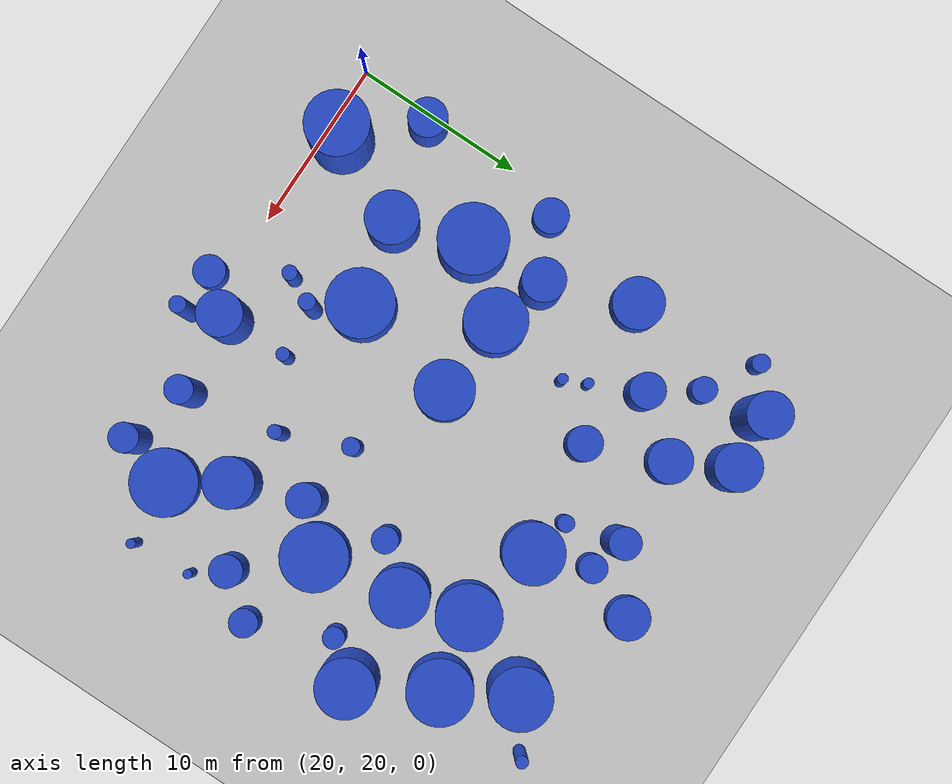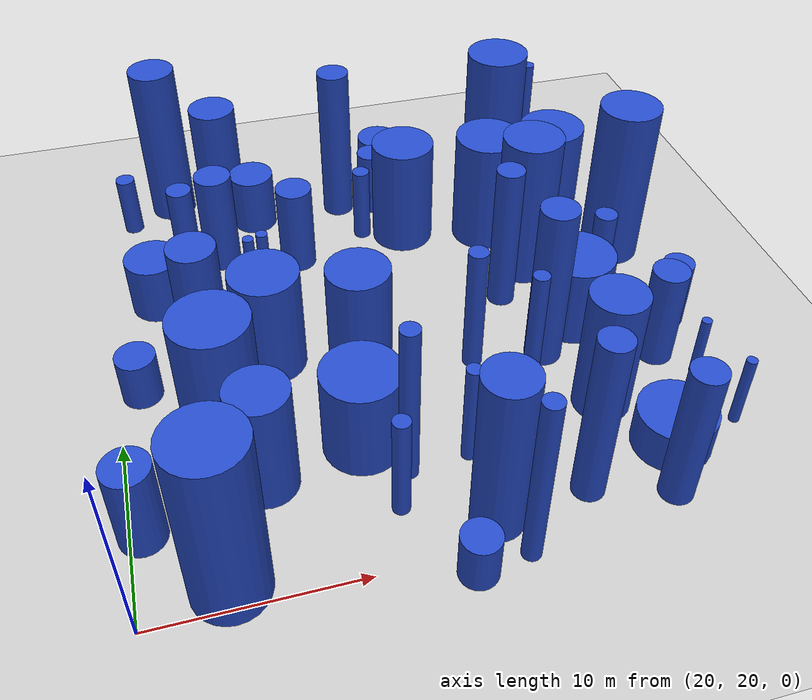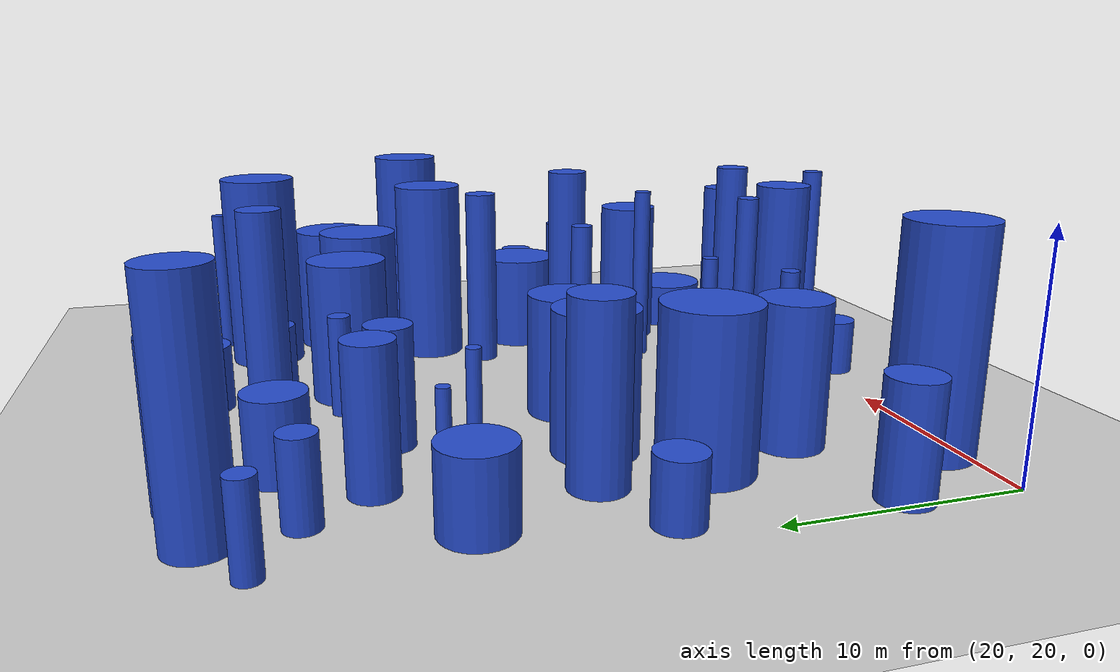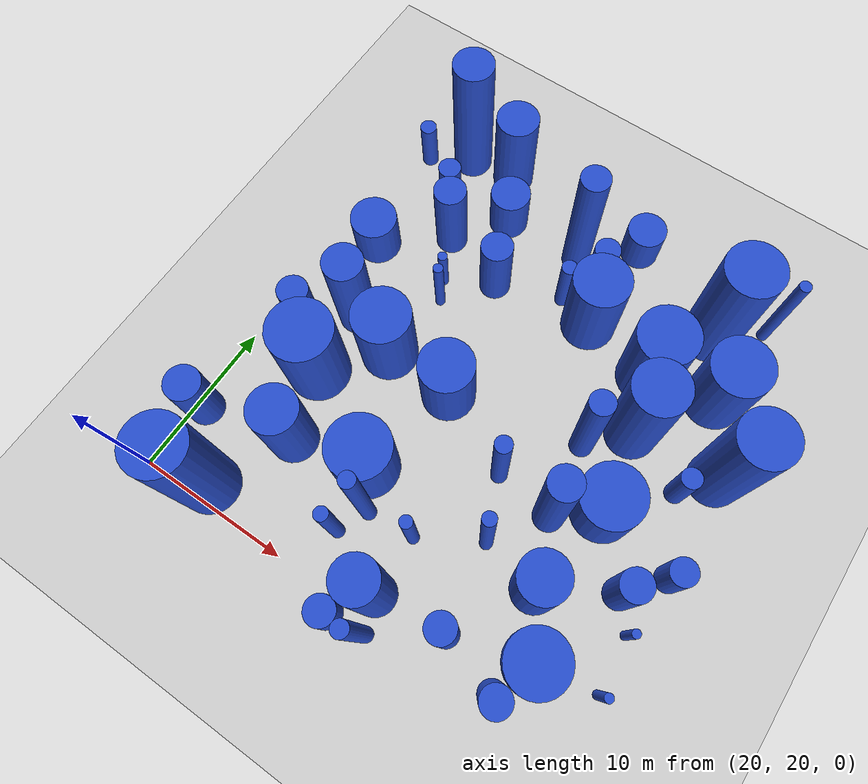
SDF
<sdf version="1.6">
 <world name="default">
  <model name="ground_plane">
   <static>1</static>
   <link name="link">
    <collision name="collision">
     <geometry><plane><normal>0 0 1</normal><size>100 100</size></plane></geometry>
     <surface><friction><ode><mu>100</mu><mu2>50</mu2></ode></friction></surface>
    </collision>
    <visual name="visual">
     <cast_shadows>0</cast_shadows>
     <geometry><plane><normal>0 0 1</normal><size>100 100</size></plane></geometry>
     <material>
      <script><uri>file://media/materials/scripts/gazebo.material</uri><name>Gazebo/Grey</name></script>
     </material>
    </visual>
   </link>
  </model>
  <model name="Cylinder 3">
   <static>1</static>
   <link name="link">
    <inertial>
     <mass>0.00305</mass>
     <inertia><ixx>0.01369</ixx><ixy>0</ixy><ixz>0</ixz><iyy>0.01369</iyy><iyz>0</iyz><izz>0.01369</izz></inertia>
    </inertial>
    <collision name="collision">
     <geometry><cylinder><length>7.28930</length><radius>0.51571</radius></cylinder></geometry>
     <surface><contact><collide_without_contact>1</collide_without_contact></contact></surface>
    </collision>
    <visual name="visual">
     <geometry><cylinder><length>7.28930</length><radius>0.51571</radius></cylinder></geometry>
     <material>
      <script><uri>file://media/materials/scripts/gazebo.material</uri><name>Gazebo/Blue</name></script>
     </material>
    </visual>
    <gravity>0</gravity>
   </link>
   <pose>38.00753 31.23064 3.64465 0 0 0</pose>
  </model>
  <model name="Cylinder 5">
   <static>1</static>
   <link name="link">
    <inertial>
     <mass>0.04239</mass>
     <inertia><ixx>0.35980</ixx><ixy>0</ixy><ixz>0</ixz><iyy>0.35980</iyy><iyz>0</iyz><izz>0.35980</izz></inertia>
    </inertial>
    <collision name="collision">
     <geometry><cylinder><length>9.66818</length><radius>1.67076</radius></cylinder></geometry>
     <surface><contact><collide_without_contact>1</collide_without_contact></contact></surface>
    </collision>
    <visual name="visual">
     <geometry><cylinder><length>9.66818</length><radius>1.67076</radius></cylinder></geometry>
     <material>
      <script><uri>file://media/materials/scripts/gazebo.material</uri><name>Gazebo/Blue</name></script>
     </material>
    </visual>
    <gravity>0</gravity>
   </link>
   <pose>48.88509 38.18238 4.83409 0 0 0</pose>
  </model>
  <model name="Cylinder 7">
   <static>1</static>
   <link name="link">
    <inertial>
     <mass>0.01169</mass>
     <inertia><ixx>0.01736</ixx><ixy>0</ixy><ixz>0</ixz><iyy>0.01736</iyy><iyz>0</iyz><izz>0.01736</izz></inertia>
    </inertial>
    <collision name="collision">
     <geometry><cylinder><length>3.33762</length><radius>1.49312</radius></cylinder></geometry>
     <surface><contact><collide_without_contact>1</collide_without_contact></contact></surface>
    </collision>
    <visual name="visual">
     <geometry><cylinder><length>3.33762</length><radius>1.49312</radius></cylinder></geometry>
     <material>
      <script><uri>file://media/materials/scripts/gazebo.material</uri><name>Gazebo/Blue</name></script>
     </material>
    </visual>
    <gravity>0</gravity>
   </link>
   <pose>22.59436 39.99384 1.66881 0 0 0</pose>
  </model>
  <model name="Cylinder 15">
   <static>1</static>
   <link name="link">
    <inertial>
     <mass>0.00899</mass>
     <inertia><ixx>0.01276</ixx><ixy>0</ixy><ixz>0</ixz><iyy>0.01276</iyy><iyz>0</iyz><izz>0.01276</izz></inertia>
    </inertial>
    <collision name="collision">
     <geometry><cylinder><length>3.47677</length><radius>1.28308</radius></cylinder></geometry>
     <surface><contact><collide_without_contact>1</collide_without_contact></contact></surface>
    </collision>
    <visual name="visual">
     <geometry><cylinder><length>3.47677</length><radius>1.28308</radius></cylinder></geometry>
     <material>
      <script><uri>file://media/materials/scripts/gazebo.material</uri><name>Gazebo/Blue</name></script>
     </material>
    </visual>
    <gravity>0</gravity>
   </link>
   <pose>28.92360 46.29860 1.73838 0 0 0</pose>
  </model>
  <model name="Cylinder 16">
   <static>1</static>
   <link name="link">
    <inertial>
     <mass>0.00073</mass>
     <inertia><ixx>0.00134</ixx><ixy>0</ixy><ixz>0</ixz><iyy>0.00134</iyy><iyz>0</iyz><izz>0.00134</izz></inertia>
    </inertial>
    <collision name="collision">
     <geometry><cylinder><length>4.65444</length><radius>0.31615</radius></cylinder></geometry>
     <surface><contact><collide_without_contact>1</collide_without_contact></contact></surface>
    </collision>
    <visual name="visual">
     <geometry><cylinder><length>4.65444</length><radius>0.31615</radius></cylinder></geometry>
     <material>
      <script><uri>file://media/materials/scripts/gazebo.material</uri><name>Gazebo/Blue</name></script>
     </material>
    </visual>
    <gravity>0</gravity>
   </link>
   <pose>28.49291 38.78781 2.32722 0 0 0</pose>
  </model>
  <model name="Cylinder 17">
   <static>1</static>
   <link name="link">
    <inertial>
     <mass>0.02369</mass>
     <inertia><ixx>0.11434</ixx><ixy>0</ixy><ixz>0</ixz><iyy>0.11434</iyy><iyz>0</iyz><izz>0.11434</izz></inertia>
    </inertial>
    <collision name="collision">
     <geometry><cylinder><length>7.18411</length><radius>1.44899</radius></cylinder></geometry>
     <surface><contact><collide_without_contact>1</collide_without_contact></contact></surface>
    </collision>
    <visual name="visual">
     <geometry><cylinder><length>7.18411</length><radius>1.44899</radius></cylinder></geometry>
     <material>
      <script><uri>file://media/materials/scripts/gazebo.material</uri><name>Gazebo/Blue</name></script>
     </material>
    </visual>
    <gravity>0</gravity>
   </link>
   <pose>43.31905 26.78239 3.59205 0 0 0</pose>
  </model>
  <model name="Cylinder 20">
   <static>1</static>
   <link name="link">
    <inertial>
     <mass>0.02748</mass>
     <inertia><ixx>0.07459</ixx><ixy>0</ixy><ixz>0</ixz><iyy>0.07459</iyy><iyz>0</iyz><izz>0.07459</izz></inertia>
    </inertial>
    <collision name="collision">
     <geometry><cylinder><length>4.60114</length><radius>1.94977</radius></cylinder></geometry>
     <surface><contact><collide_without_contact>1</collide_without_contact></contact></surface>
    </collision>
    <visual name="visual">
     <geometry><cylinder><length>4.60114</length><radius>1.94977</radius></cylinder></geometry>
     <material>
      <script><uri>file://media/materials/scripts/gazebo.material</uri><name>Gazebo/Blue</name></script>
     </material>
    </visual>
    <gravity>0</gravity>
   </link>
   <pose>44.23002 32.83071 2.30057 0 0 0</pose>
  </model>
  <model name="Cylinder 21">
   <static>1</static>
   <link name="link">
    <inertial>
     <mass>0.04249</mass>
     <inertia><ixx>0.20488</ixx><ixy>0</ixy><ixz>0</ixz><iyy>0.20488</iyy><iyz>0</iyz><izz>0.20488</izz></inertia>
    </inertial>
    <collision name="collision">
     <geometry><cylinder><length>6.77432</length><radius>1.99815</radius></cylinder></geometry>
     <surface><contact><collide_without_contact>1</collide_without_contact></contact></surface>
    </collision>
    <visual name="visual">
     <geometry><cylinder><length>6.77432</length><radius>1.99815</radius></cylinder></geometry>
     <material>
      <script><uri>file://media/materials/scripts/gazebo.material</uri><name>Gazebo/Blue</name></script>
     </material>
    </visual>
    <gravity>0</gravity>
   </link>
   <pose>24.93120 30.50720 3.38716 0 0 0</pose>
  </model>
  <model name="Cylinder 22">
   <static>1</static>
   <link name="link">
    <inertial>
     <mass>0.00798</mass>
     <inertia><ixx>0.02305</ixx><ixy>0</ixy><ixz>0</ixz><iyy>0.02305</iyy><iyz>0</iyz><izz>0.02305</izz></inertia>
    </inertial>
    <collision name="collision">
     <geometry><cylinder><length>5.65218</length><radius>0.94827</radius></cylinder></geometry>
     <surface><contact><collide_without_contact>1</collide_without_contact></contact></surface>
    </collision>
    <visual name="visual">
     <geometry><cylinder><length>5.65218</length><radius>0.94827</radius></cylinder></geometry>
     <material>
      <script><uri>file://media/materials/scripts/gazebo.material</uri><name>Gazebo/Blue</name></script>
     </material>
    </visual>
    <gravity>0</gravity>
   </link>
   <pose>47.47192 29.25667 2.82609 0 0 0</pose>
  </model>
  <model name="Cylinder 28">
   <static>1</static>
   <link name="link">
    <inertial>
     <mass>0.04957</mass>
     <inertia><ixx>0.41838</ixx><ixy>0</ixy><ixz>0</ixz><iyy>0.41838</iyy><iyz>0</iyz><izz>0.41838</izz></inertia>
    </inertial>
    <collision name="collision">
     <geometry><cylinder><length>9.55868</length><radius>1.81706</radius></cylinder></geometry>
     <surface><contact><collide_without_contact>1</collide_without_contact></contact></surface>
    </collision>
    <visual name="visual">
     <geometry><cylinder><length>9.55868</length><radius>1.81706</radius></cylinder></geometry>
     <material>
      <script><uri>file://media/materials/scripts/gazebo.material</uri><name>Gazebo/Blue</name></script>
     </material>
    </visual>
    <gravity>0</gravity>
   </link>
   <pose>24.00799 21.09778 4.77934 0 0 0</pose>
  </model>
  <model name="Cylinder 33">
   <static>1</static>
   <link name="link">
    <inertial>
     <mass>0.00336</mass>
     <inertia><ixx>0.02625</ixx><ixy>0</ixy><ixz>0</ixz><iyy>0.02625</iyy><iyz>0</iyz><izz>0.02625</izz></inertia>
    </inertial>
    <collision name="collision">
     <geometry><cylinder><length>9.65038</length><radius>0.47066</radius></cylinder></geometry>
     <surface><contact><collide_without_contact>1</collide_without_contact></contact></surface>
    </collision>
    <visual name="visual">
     <geometry><cylinder><length>9.65038</length><radius>0.47066</radius></cylinder></geometry>
     <material>
      <script><uri>file://media/materials/scripts/gazebo.material</uri><name>Gazebo/Blue</name></script>
     </material>
    </visual>
    <gravity>0</gravity>
   </link>
   <pose>36.78963 19.39542 4.82519 0 0 0</pose>
  </model>
  <model name="Cylinder 34">
   <static>1</static>
   <link name="link">
    <inertial>
     <mass>0.03045</mass>
     <inertia><ixx>0.09258</ixx><ixy>0</ixy><ixz>0</ixz><iyy>0.09258</iyy><iyz>0</iyz><izz>0.09258</izz></inertia>
    </inertial>
    <collision name="collision">
     <geometry><cylinder><length>4.98124</length><radius>1.97263</radius></cylinder></geometry>
     <surface><contact><collide_without_contact>1</collide_without_contact></contact></surface>
    </collision>
    <visual name="visual">
     <geometry><cylinder><length>4.98124</length><radius>1.97263</radius></cylinder></geometry>
     <material>
      <script><uri>file://media/materials/scripts/gazebo.material</uri><name>Gazebo/Blue</name></script>
     </material>
    </visual>
    <gravity>0</gravity>
   </link>
   <pose>31.18406 27.22731 2.49062 0 0 0</pose>
  </model>
  <model name="Cylinder 37">
   <static>1</static>
   <link name="link">
    <inertial>
     <mass>0.00261</mass>
     <inertia><ixx>0.00408</ixx><ixy>0</ixy><ixz>0</ixz><iyy>0.00408</iyy><iyz>0</iyz><izz>0.00408</izz></inertia>
    </inertial>
    <collision name="collision">
     <geometry><cylinder><length>4.19072</length><radius>0.62961</radius></cylinder></geometry>
     <surface><contact><collide_without_contact>1</collide_without_contact></contact></surface>
    </collision>
    <visual name="visual">
     <geometry><cylinder><length>4.19072</length><radius>0.62961</radius></cylinder></geometry>
     <material>
      <script><uri>file://media/materials/scripts/gazebo.material</uri><name>Gazebo/Blue</name></script>
     </material>
    </visual>
    <gravity>0</gravity>
   </link>
   <pose>47.32506 36.16740 2.09536 0 0 0</pose>
  </model>
  <model name="Cylinder 39">
   <static>1</static>
   <link name="link">
    <inertial>
     <mass>0.00223</mass>
     <inertia><ixx>0.01370</ixx><ixy>0</ixy><ixz>0</ixz><iyy>0.01370</iyy><iyz>0</iyz><izz>0.01370</izz></inertia>
    </inertial>
    <collision name="collision">
     <geometry><cylinder><length>8.56663</length><radius>0.40665</radius></cylinder></geometry>
     <surface><contact><collide_without_contact>1</collide_without_contact></contact></surface>
    </collision>
    <visual name="visual">
     <geometry><cylinder><length>8.56663</length><radius>0.40665</radius></cylinder></geometry>
     <material>
      <script><uri>file://media/materials/scripts/gazebo.material</uri><name>Gazebo/Blue</name></script>
     </material>
    </visual>
    <gravity>0</gravity>
   </link>
   <pose>39.60076 27.42604 4.28332 0 0 0</pose>
  </model>
  <model name="Cylinder 42">
   <static>1</static>
   <link name="link">
    <inertial>
     <mass>0.01800</mass>
     <inertia><ixx>0.09119</ixx><ixy>0</ixy><ixz>0</ixz><iyy>0.09119</iyy><iyz>0</iyz><izz>0.09119</izz></inertia>
    </inertial>
    <collision name="collision">
     <geometry><cylinder><length>7.49834</length><radius>1.23608</radius></cylinder></geometry>
     <surface><contact><collide_without_contact>1</collide_without_contact></contact></surface>
    </collision>
    <visual name="visual">
     <geometry><cylinder><length>7.49834</length><radius>1.23608</radius></cylinder></geometry>
     <material>
      <script><uri>file://media/materials/scripts/gazebo.material</uri><name>Gazebo/Blue</name></script>
     </material>
    </visual>
    <gravity>0</gravity>
   </link>
   <pose>24.71870 34.94837 3.74917 0 0 0</pose>
  </model>
  <model name="Cylinder 46">
   <static>1</static>
   <link name="link">
    <inertial>
     <mass>0.03771</mass>
     <inertia><ixx>0.26967</ixx><ixy>0</ixy><ixz>0</ixz><iyy>0.26967</iyy><iyz>0</iyz><izz>0.26967</izz></inertia>
    </inertial>
    <collision name="collision">
     <geometry><cylinder><length>8.81201</length><radius>1.65047</radius></cylinder></geometry>
     <surface><contact><collide_without_contact>1</collide_without_contact></contact></surface>
    </collision>
    <visual name="visual">
     <geometry><cylinder><length>8.81201</length><radius>1.65047</radius></cylinder></geometry>
     <material>
      <script><uri>file://media/materials/scripts/gazebo.material</uri><name>Gazebo/Blue</name></script>
     </material>
    </visual>
    <gravity>0</gravity>
   </link>
   <pose>43.27853 37.92560 4.40600 0 0 0</pose>
  </model>
  <model name="Cylinder 49">
   <static>1</static>
   <link name="link">
    <inertial>
     <mass>0.03155</mass>
     <inertia><ixx>0.13440</ixx><ixy>0</ixy><ixz>0</ixz><iyy>0.13440</iyy><iyz>0</iyz><izz>0.13440</izz></inertia>
    </inertial>
    <collision name="collision">
     <geometry><cylinder><length>6.46566</length><radius>1.76245</radius></cylinder></geometry>
     <surface><contact><collide_without_contact>1</collide_without_contact></contact></surface>
    </collision>
    <visual name="visual">
     <geometry><cylinder><length>6.46566</length><radius>1.76245</radius></cylinder></geometry>
     <material>
      <script><uri>file://media/materials/scripts/gazebo.material</uri><name>Gazebo/Blue</name></script>
     </material>
    </visual>
    <gravity>0</gravity>
   </link>
   <pose>37.36097 42.71363 3.23283 0 0 0</pose>
  </model>
  <model name="Cylinder 52">
   <static>1</static>
   <link name="link">
    <inertial>
     <mass>0.00422</mass>
     <inertia><ixx>0.00619</ixx><ixy>0</ixy><ixz>0</ixz><iyy>0.00619</iyy><iyz>0</iyz><izz>0.00619</izz></inertia>
    </inertial>
    <collision name="collision">
     <geometry><cylinder><length>3.94762</length><radius>0.82470</radius></cylinder></geometry>
     <surface><contact><collide_without_contact>1</collide_without_contact></contact></surface>
    </collision>
    <visual name="visual">
     <geometry><cylinder><length>3.94762</length><radius>0.82470</radius></cylinder></geometry>
     <material>
      <script><uri>file://media/materials/scripts/gazebo.material</uri><name>Gazebo/Blue</name></script>
     </material>
    </visual>
    <gravity>0</gravity>
   </link>
   <pose>36.24593 45.98326 1.97381 0 0 0</pose>
  </model>
  <model name="Cylinder 55">
   <static>1</static>
   <link name="link">
    <inertial>
     <mass>0.03690</mass>
     <inertia><ixx>0.17361</ixx><ixy>0</ixy><ixz>0</ixz><iyy>0.17361</iyy><iyz>0</iyz><izz>0.17361</izz></inertia>
    </inertial>
    <collision name="collision">
     <geometry><cylinder><length>6.78782</length><radius>1.86036</radius></cylinder></geometry>
     <surface><contact><collide_without_contact>1</collide_without_contact></contact></surface>
    </collision>
    <visual name="visual">
     <geometry><cylinder><length>6.78782</length><radius>1.86036</radius></cylinder></geometry>
     <material>
      <script><uri>file://media/materials/scripts/gazebo.material</uri><name>Gazebo/Blue</name></script>
     </material>
    </visual>
    <gravity>0</gravity>
   </link>
   <pose>42.17758 41.68332 3.39391 0 0 0</pose>
  </model>
  <model name="Cylinder 58">
   <static>1</static>
   <link name="link">
    <inertial>
     <mass>0.02395</mass>
     <inertia><ixx>0.17787</ixx><ixy>0</ixy><ixz>0</ixz><iyy>0.17787</iyy><iyz>0</iyz><izz>0.17787</izz></inertia>
    </inertial>
    <collision name="collision">
     <geometry><cylinder><length>9.17263</length><radius>1.28925</radius></cylinder></geometry>
     <surface><contact><collide_without_contact>1</collide_without_contact></contact></surface>
    </collision>
    <visual name="visual">
     <geometry><cylinder><length>9.17263</length><radius>1.28925</radius></cylinder></geometry>
     <material>
      <script><uri>file://media/materials/scripts/gazebo.material</uri><name>Gazebo/Blue</name></script>
     </material>
    </visual>
    <gravity>0</gravity>
   </link>
   <pose>35.96005 21.47354 4.58631 0 0 0</pose>
  </model>
  <model name="Cylinder 59">
   <static>1</static>
   <link name="link">
    <inertial>
     <mass>0.00135</mass>
     <inertia><ixx>0.00380</ixx><ixy>0</ixy><ixz>0</ixz><iyy>0.00380</iyy><iyz>0</iyz><izz>0.00380</izz></inertia>
    </inertial>
    <collision name="collision">
     <geometry><cylinder><length>5.76496</length><radius>0.38642</radius></cylinder></geometry>
     <surface><contact><collide_without_contact>1</collide_without_contact></contact></surface>
    </collision>
    <visual name="visual">
     <geometry><cylinder><length>5.76496</length><radius>0.38642</radius></cylinder></geometry>
     <material>
      <script><uri>file://media/materials/scripts/gazebo.material</uri><name>Gazebo/Blue</name></script>
     </material>
    </visual>
    <gravity>0</gravity>
   </link>
   <pose>35.87925 25.28838 2.88248 0 0 0</pose>
  </model>
  <model name="Cylinder 61">
   <static>1</static>
   <link name="link">
    <inertial>
     <mass>0.00038</mass>
     <inertia><ixx>0.00040</ixx><ixy>0</ixy><ixz>0</ixz><iyy>0.00040</iyy><iyz>0</iyz><izz>0.00040</izz></inertia>
    </inertial>
    <collision name="collision">
     <geometry><cylinder><length>3.52711</length><radius>0.26293</radius></cylinder></geometry>
     <surface><contact><collide_without_contact>1</collide_without_contact></contact></surface>
    </collision>
    <visual name="visual">
     <geometry><cylinder><length>3.52711</length><radius>0.26293</radius></cylinder></geometry>
     <material>
      <script><uri>file://media/materials/scripts/gazebo.material</uri><name>Gazebo/Blue</name></script>
     </material>
    </visual>
    <gravity>0</gravity>
   </link>
   <pose>48.90582 27.49396 1.76356 0 0 0</pose>
  </model>
  <model name="Cylinder 63">
   <static>1</static>
   <link name="link">
    <inertial>
     <mass>0.00046</mass>
     <inertia><ixx>0.00065</ixx><ixy>0</ixy><ixz>0</ixz><iyy>0.00065</iyy><iyz>0</iyz><izz>0.00065</izz></inertia>
    </inertial>
    <collision name="collision">
     <geometry><cylinder><length>4.07018</length><radius>0.26929</radius></cylinder></geometry>
     <surface><contact><collide_without_contact>1</collide_without_contact></contact></surface>
    </collision>
    <visual name="visual">
     <geometry><cylinder><length>4.07018</length><radius>0.26929</radius></cylinder></geometry>
     <material>
      <script><uri>file://media/materials/scripts/gazebo.material</uri><name>Gazebo/Blue</name></script>
     </material>
    </visual>
    <gravity>0</gravity>
   </link>
   <pose>49.19931 23.98577 2.03509 0 0 0</pose>
  </model>
  <model name="Cylinder 65">
   <static>1</static>
   <link name="link">
    <inertial>
     <mass>0.02238</mass>
     <inertia><ixx>0.08492</ixx><ixy>0</ixy><ixz>0</ixz><iyy>0.08492</iyy><iyz>0</iyz><izz>0.08492</izz></inertia>
    </inertial>
    <collision name="collision">
     <geometry><cylinder><length>6.21771</length><radius>1.51373</radius></cylinder></geometry>
     <surface><contact><collide_without_contact>1</collide_without_contact></contact></surface>
    </collision>
    <visual name="visual">
     <geometry><cylinder><length>6.21771</length><radius>1.51373</radius></cylinder></geometry>
     <material>
      <script><uri>file://media/materials/scripts/gazebo.material</uri><name>Gazebo/Blue</name></script>
     </material>
    </visual>
    <gravity>0</gravity>
   </link>
   <pose>26.38914 26.12615 3.10885 0 0 0</pose>
  </model>
  <model name="Cylinder 66">
   <static>1</static>
   <link name="link">
    <inertial>
     <mass>0.02529</mass>
     <inertia><ixx>0.20629</ixx><ixy>0</ixy><ixz>0</ixz><iyy>0.20629</iyy><iyz>0</iyz><izz>0.20629</izz></inertia>
    </inertial>
    <collision name="collision">
     <geometry><cylinder><length>9.63734</length><radius>1.29249</radius></cylinder></geometry>
     <surface><contact><collide_without_contact>1</collide_without_contact></contact></surface>
    </collision>
    <visual name="visual">
     <geometry><cylinder><length>9.63734</length><radius>1.29249</radius></cylinder></geometry>
     <material>
      <script><uri>file://media/materials/scripts/gazebo.material</uri><name>Gazebo/Blue</name></script>
     </material>
    </visual>
    <gravity>0</gravity>
   </link>
   <pose>24.19518 49.01558 4.81867 0 0 0</pose>
  </model>
  <model name="Cylinder 76">
   <static>1</static>
   <link name="link">
    <inertial>
     <mass>0.01356</mass>
     <inertia><ixx>0.01871</ixx><ixy>0</ixy><ixz>0</ixz><iyy>0.01871</iyy><iyz>0</iyz><izz>0.01871</izz></inertia>
    </inertial>
    <collision name="collision">
     <geometry><cylinder><length>2.26327</length><radius>1.95271</radius></cylinder></geometry>
     <surface><contact><collide_without_contact>1</collide_without_contact></contact></surface>
    </collision>
    <visual name="visual">
     <geometry><cylinder><length>2.26327</length><radius>1.95271</radius></cylinder></geometry>
     <material>
      <script><uri>file://media/materials/scripts/gazebo.material</uri><name>Gazebo/Blue</name></script>
     </material>
    </visual>
    <gravity>0</gravity>
   </link>
   <pose>45.50419 23.48188 1.13164 0 0 0</pose>
  </model>
  <model name="Cylinder 80">
   <static>1</static>
   <link name="link">
    <inertial>
     <mass>0.00755</mass>
     <inertia><ixx>0.04749</ixx><ixy>0</ixy><ixz>0</ixz><iyy>0.04749</iyy><iyz>0</iyz><izz>0.04749</izz></inertia>
    </inertial>
    <collision name="collision">
     <geometry><cylinder><length>8.58897</length><radius>0.74820</radius></cylinder></geometry>
     <surface><contact><collide_without_contact>1</collide_without_contact></contact></surface>
    </collision>
    <visual name="visual">
     <geometry><cylinder><length>8.58897</length><radius>0.74820</radius></cylinder></geometry>
     <material>
      <script><uri>file://media/materials/scripts/gazebo.material</uri><name>Gazebo/Blue</name></script>
     </material>
    </visual>
    <gravity>0</gravity>
   </link>
   <pose>41.15260 35.58675 4.29448 0 0 0</pose>
  </model>
  <model name="Cylinder 81">
   <static>1</static>
   <link name="link">
    <inertial>
     <mass>0.01397</mass>
     <inertia><ixx>0.10717</ixx><ixy>0</ixy><ixz>0</ixz><iyy>0.10717</iyy><iyz>0</iyz><izz>0.10717</izz></inertia>
    </inertial>
    <collision name="collision">
     <geometry><cylinder><length>9.44777</length><radius>0.97011</radius></cylinder></geometry>
     <surface><contact><collide_without_contact>1</collide_without_contact></contact></surface>
    </collision>
    <visual name="visual">
     <geometry><cylinder><length>9.44777</length><radius>0.97011</radius></cylinder></geometry>
     <material>
      <script><uri>file://media/materials/scripts/gazebo.material</uri><name>Gazebo/Blue</name></script>
     </material>
    </visual>
    <gravity>0</gravity>
   </link>
   <pose>41.78332 30.79455 4.72389 0 0 0</pose>
  </model>
  <model name="Cylinder 82">
   <static>1</static>
   <link name="link">
    <inertial>
     <mass>0.00169</mass>
     <inertia><ixx>0.00296</ixx><ixy>0</ixy><ixz>0</ixz><iyy>0.00296</iyy><iyz>0</iyz><izz>0.00296</izz></inertia>
    </inertial>
    <collision name="collision">
     <geometry><cylinder><length>4.50191</length><radius>0.48929</radius></cylinder></geometry>
     <surface><contact><collide_without_contact>1</collide_without_contact></contact></surface>
    </collision>
    <visual name="visual">
     <geometry><cylinder><length>4.50191</length><radius>0.48929</radius></cylinder></geometry>
     <material>
      <script><uri>file://media/materials/scripts/gazebo.material</uri><name>Gazebo/Blue</name></script>
     </material>
    </visual>
    <gravity>0</gravity>
   </link>
   <pose>35.01297 43.34068 2.25096 0 0 0</pose>
  </model>
  <model name="Cylinder 92">
   <static>1</static>
   <link name="link">
    <inertial>
     <mass>0.00953</mass>
     <inertia><ixx>0.02115</ixx><ixy>0</ixy><ixz>0</ixz><iyy>0.02115</iyy><iyz>0</iyz><izz>0.02115</izz></inertia>
    </inertial>
    <collision name="collision">
     <geometry><cylinder><length>4.77820</length><radius>1.12674</radius></cylinder></geometry>
     <surface><contact><collide_without_contact>1</collide_without_contact></contact></surface>
    </collision>
    <visual name="visual">
     <geometry><cylinder><length>4.77820</length><radius>1.12674</radius></cylinder></geometry>
     <material>
      <script><uri>file://media/materials/scripts/gazebo.material</uri><name>Gazebo/Blue</name></script>
     </material>
    </visual>
    <gravity>0</gravity>
   </link>
   <pose>20.61411 24.64053 2.38910 0 0 0</pose>
  </model>
  <model name="Cylinder 93">
   <static>1</static>
   <link name="link">
    <inertial>
     <mass>0.00330</mass>
     <inertia><ixx>0.02323</ixx><ixy>0</ixy><ixz>0</ixz><iyy>0.02323</iyy><iyz>0</iyz><izz>0.02323</izz></inertia>
    </inertial>
    <collision name="collision">
     <geometry><cylinder><length>9.15911</length><radius>0.47867</radius></cylinder></geometry>
     <surface><contact><collide_without_contact>1</collide_without_contact></contact></surface>
    </collision>
    <visual name="visual">
     <geometry><cylinder><length>9.15911</length><radius>0.47867</radius></cylinder></geometry>
     <material>
      <script><uri>file://media/materials/scripts/gazebo.material</uri><name>Gazebo/Blue</name></script>
     </material>
    </visual>
    <gravity>0</gravity>
   </link>
   <pose>32.84077 25.03536 4.57956 0 0 0</pose>
  </model>
  <model name="Cylinder 97">
   <static>1</static>
   <link name="link">
    <inertial>
     <mass>0.00356</mass>
     <inertia><ixx>0.00276</ixx><ixy>0</ixy><ixz>0</ixz><iyy>0.00276</iyy><iyz>0</iyz><izz>0.00276</izz></inertia>
    </inertial>
    <collision name="collision">
     <geometry><cylinder><length>2.58560</length><radius>0.93623</radius></cylinder></geometry>
     <surface><contact><collide_without_contact>1</collide_without_contact></contact></surface>
    </collision>
    <visual name="visual">
     <geometry><cylinder><length>2.58560</length><radius>0.93623</radius></cylinder></geometry>
     <material>
      <script><uri>file://media/materials/scripts/gazebo.material</uri><name>Gazebo/Blue</name></script>
     </material>
    </visual>
    <gravity>0</gravity>
   </link>
   <pose>34.27893 19.09262 1.29280 0 0 0</pose>
  </model>
  <model name="Cylinder 104">
   <static>1</static>
   <link name="link">
    <inertial>
     <mass>0.00159</mass>
     <inertia><ixx>0.00181</ixx><ixy>0</ixy><ixz>0</ixz><iyy>0.00181</iyy><iyz>0</iyz><izz>0.00181</izz></inertia>
    </inertial>
    <collision name="collision">
     <geometry><cylinder><length>3.57334</length><radius>0.53274</radius></cylinder></geometry>
     <surface><contact><collide_without_contact>1</collide_without_contact></contact></surface>
    </collision>
    <visual name="visual">
     <geometry><cylinder><length>3.57334</length><radius>0.53274</radius></cylinder></geometry>
     <material>
      <script><uri>file://media/materials/scripts/gazebo.material</uri><name>Gazebo/Blue</name></script>
     </material>
    </visual>
    <gravity>0</gravity>
   </link>
   <pose>21.64178 47.47937 1.78667 0 0 0</pose>
  </model>
  <model name="Cylinder 105">
   <static>1</static>
   <link name="link">
    <inertial>
     <mass>0.03126</mass>
     <inertia><ixx>0.12054</ixx><ixy>0</ixy><ixz>0</ixz><iyy>0.12054</iyy><iyz>0</iyz><izz>0.12054</izz></inertia>
    </inertial>
    <collision name="collision">
     <geometry><cylinder><length>6.03046</length><radius>1.81672</radius></cylinder></geometry>
     <surface><contact><collide_without_contact>1</collide_without_contact></contact></surface>
    </collision>
    <visual name="visual">
     <geometry><cylinder><length>6.03046</length><radius>1.81672</radius></cylinder></geometry>
     <material>
      <script><uri>file://media/materials/scripts/gazebo.material</uri><name>Gazebo/Blue</name></script>
     </material>
    </visual>
    <gravity>0</gravity>
   </link>
   <pose>27.91542 33.97377 3.01523 0 0 0</pose>
  </model>
  <model name="Cylinder 107">
   <static>1</static>
   <link name="link">
    <inertial>
     <mass>0.02461</mass>
     <inertia><ixx>0.07783</ixx><ixy>0</ixy><ixz>0</ixz><iyy>0.07783</iyy><iyz>0</iyz><izz>0.07783</izz></inertia>
    </inertial>
    <collision name="collision">
     <geometry><cylinder><length>5.40975</length><radius>1.70177</radius></cylinder></geometry>
     <surface><contact><collide_without_contact>1</collide_without_contact></contact></surface>
    </collision>
    <visual name="visual">
     <geometry><cylinder><length>5.40975</length><radius>1.70177</radius></cylinder></geometry>
     <material>
      <script><uri>file://media/materials/scripts/gazebo.material</uri><name>Gazebo/Blue</name></script>
     </material>
    </visual>
    <gravity>0</gravity>
   </link>
   <pose>32.60360 33.73642 2.70488 0 0 0</pose>
  </model>
  <model name="Cylinder 108">
   <static>1</static>
   <link name="link">
    <inertial>
     <mass>0.00715</mass>
     <inertia><ixx>0.00789</ixx><ixy>0</ixy><ixz>0</ixz><iyy>0.00789</iyy><iyz>0</iyz><izz>0.00789</izz></inertia>
    </inertial>
    <collision name="collision">
     <geometry><cylinder><length>2.92921</length><radius>1.24657</radius></cylinder></geometry>
     <surface><contact><collide_without_contact>1</collide_without_contact></contact></surface>
    </collision>
    <visual name="visual">
     <geometry><cylinder><length>2.92921</length><radius>1.24657</radius></cylinder></geometry>
     <material>
      <script><uri>file://media/materials/scripts/gazebo.material</uri><name>Gazebo/Blue</name></script>
     </material>
    </visual>
    <gravity>0</gravity>
   </link>
   <pose>37.46867 49.20505 1.46461 0 0 0</pose>
  </model>
  <model name="Cylinder 109">
   <static>1</static>
   <link name="link">
    <inertial>
     <mass>0.03426</mass>
     <inertia><ixx>0.13864</ixx><ixy>0</ixy><ixz>0</ixz><iyy>0.13864</iyy><iyz>0</iyz><izz>0.13864</izz></inertia>
    </inertial>
    <collision name="collision">
     <geometry><cylinder><length>6.15892</length><radius>1.88189</radius></cylinder></geometry>
     <surface><contact><collide_without_contact>1</collide_without_contact></contact></surface>
    </collision>
    <visual name="visual">
     <geometry><cylinder><length>6.15892</length><radius>1.88189</radius></cylinder></geometry>
     <material>
      <script><uri>file://media/materials/scripts/gazebo.material</uri><name>Gazebo/Blue</name></script>
     </material>
    </visual>
    <gravity>0</gravity>
   </link>
   <pose>46.47437 42.63493 3.07946 0 0 0</pose>
  </model>
  <model name="Cylinder 112">
   <static>1</static>
   <link name="link">
    <inertial>
     <mass>0.00300</mass>
     <inertia><ixx>0.00349</ixx><ixy>0</ixy><ixz>0</ixz><iyy>0.00349</iyy><iyz>0</iyz><izz>0.00349</izz></inertia>
    </inertial>
    <collision name="collision">
     <geometry><cylinder><length>3.51757</length><radius>0.73632</radius></cylinder></geometry>
     <surface><contact><collide_without_contact>1</collide_without_contact></contact></surface>
    </collision>
    <visual name="visual">
     <geometry><cylinder><length>3.51757</length><radius>0.73632</radius></cylinder></geometry>
     <material>
      <script><uri>file://media/materials/scripts/gazebo.material</uri><name>Gazebo/Blue</name></script>
     </material>
    </visual>
    <gravity>0</gravity>
   </link>
   <pose>24.59124 45.67402 1.75878 0 0 0</pose>
  </model>
  <model name="Cylinder 115">
   <static>1</static>
   <link name="link">
    <inertial>
     <mass>0.00963</mass>
     <inertia><ixx>0.07406</ixx><ixy>0</ixy><ixz>0</ixz><iyy>0.07406</iyy><iyz>0</iyz><izz>0.07406</izz></inertia>
    </inertial>
    <collision name="collision">
     <geometry><cylinder><length>9.50449</length><radius>0.80319</radius></cylinder></geometry>
     <surface><contact><collide_without_contact>1</collide_without_contact></contact></surface>
    </collision>
    <visual name="visual">
     <geometry><cylinder><length>9.50449</length><radius>0.80319</radius></cylinder></geometry>
     <material>
      <script><uri>file://media/materials/scripts/gazebo.material</uri><name>Gazebo/Blue</name></script>
     </material>
    </visual>
    <gravity>0</gravity>
   </link>
   <pose>40.53372 21.95238 4.75225 0 0 0</pose>
  </model>
  <model name="Cylinder 116">
   <static>1</static>
   <link name="link">
    <inertial>
     <mass>0.00980</mass>
     <inertia><ixx>0.03151</ixx><ixy>0</ixy><ixz>0</ixz><iyy>0.03151</iyy><iyz>0</iyz><izz>0.03151</izz></inertia>
    </inertial>
    <collision name="collision">
     <geometry><cylinder><length>5.95217</length><radius>1.02393</radius></cylinder></geometry>
     <surface><contact><collide_without_contact>1</collide_without_contact></contact></surface>
    </collision>
    <visual name="visual">
     <geometry><cylinder><length>5.95217</length><radius>1.02393</radius></cylinder></geometry>
     <material>
      <script><uri>file://media/materials/scripts/gazebo.material</uri><name>Gazebo/Blue</name></script>
     </material>
    </visual>
    <gravity>0</gravity>
   </link>
   <pose>26.51608 42.99821 2.97609 0 0 0</pose>
  </model>
  <model name="Cylinder 117">
   <static>1</static>
   <link name="link">
    <inertial>
     <mass>0.00869</mass>
     <inertia><ixx>0.04624</ixx><ixy>0</ixy><ixz>0</ixz><iyy>0.04624</iyy><iyz>0</iyz><izz>0.04624</izz></inertia>
    </inertial>
    <collision name="collision">
     <geometry><cylinder><length>7.85605</length><radius>0.83928</radius></cylinder></geometry>
     <surface><contact><collide_without_contact>1</collide_without_contact></contact></surface>
    </collision>
    <visual name="visual">
     <geometry><cylinder><length>7.85605</length><radius>0.83928</radius></cylinder></geometry>
     <material>
      <script><uri>file://media/materials/scripts/gazebo.material</uri><name>Gazebo/Blue</name></script>
     </material>
    </visual>
    <gravity>0</gravity>
   </link>
   <pose>44.38441 20.76535 3.92802 0 0 0</pose>
  </model>
  <model name="Cylinder 121">
   <static>1</static>
   <link name="link">
    <inertial>
     <mass>0.00171</mass>
     <inertia><ixx>0.00497</ixx><ixy>0</ixy><ixz>0</ixz><iyy>0.00497</iyy><iyz>0</iyz><izz>0.00497</izz></inertia>
    </inertial>
    <collision name="collision">
     <geometry><cylinder><length>5.85767</length><radius>0.43121</radius></cylinder></geometry>
     <surface><contact><collide_without_contact>1</collide_without_contact></contact></surface>
    </collision>
    <visual name="visual">
     <geometry><cylinder><length>5.85767</length><radius>0.43121</radius></cylinder></geometry>
     <material>
      <script><uri>file://media/materials/scripts/gazebo.material</uri><name>Gazebo/Blue</name></script>
     </material>
    </visual>
    <gravity>0</gravity>
   </link>
   <pose>31.97056 23.14290 2.92884 0 0 0</pose>
  </model>
  <model name="Cylinder 122">
   <static>1</static>
   <link name="link">
    <inertial>
     <mass>0.00150</mass>
     <inertia><ixx>0.00637</ixx><ixy>0</ixy><ixz>0</ixz><iyy>0.00637</iyy><iyz>0</iyz><izz>0.00637</izz></inertia>
    </inertial>
    <collision name="collision">
     <geometry><cylinder><length>7.10882</length><radius>0.36650</radius></cylinder></geometry>
     <surface><contact><collide_without_contact>1</collide_without_contact></contact></surface>
    </collision>
    <visual name="visual">
     <geometry><cylinder><length>7.10882</length><radius>0.36650</radius></cylinder></geometry>
     <material>
      <script><uri>file://media/materials/scripts/gazebo.material</uri><name>Gazebo/Blue</name></script>
     </material>
    </visual>
    <gravity>0</gravity>
   </link>
   <pose>47.08273 48.37302 3.55441 0 0 0</pose>
  </model>
  <model name="Cylinder 123">
   <static>1</static>
   <link name="link">
    <inertial>
     <mass>0.00448</mass>
     <inertia><ixx>0.00396</ixx><ixy>0</ixy><ixz>0</ixz><iyy>0.00396</iyy><iyz>0</iyz><izz>0.00396</izz></inertia>
    </inertial>
    <collision name="collision">
     <geometry><cylinder><length>2.73266</length><radius>1.02201</radius></cylinder></geometry>
     <surface><contact><collide_without_contact>1</collide_without_contact></contact></surface>
    </collision>
    <visual name="visual">
     <geometry><cylinder><length>2.73266</length><radius>1.02201</radius></cylinder></geometry>
     <material>
      <script><uri>file://media/materials/scripts/gazebo.material</uri><name>Gazebo/Blue</name></script>
     </material>
    </visual>
    <gravity>0</gravity>
   </link>
   <pose>21.18777 33.26145 1.36633 0 0 0</pose>
  </model>
  <model name="Cylinder 125">
   <static>1</static>
   <link name="link">
    <inertial>
     <mass>0.00419</mass>
     <inertia><ixx>0.00602</ixx><ixy>0</ixy><ixz>0</ixz><iyy>0.00602</iyy><iyz>0</iyz><izz>0.00602</izz></inertia>
    </inertial>
    <collision name="collision">
     <geometry><cylinder><length>3.89648</length><radius>0.82751</radius></cylinder></geometry>
     <surface><contact><collide_without_contact>1</collide_without_contact></contact></surface>
    </collision>
    <visual name="visual">
     <geometry><cylinder><length>3.89648</length><radius>0.82751</radius></cylinder></geometry>
     <material>
      <script><uri>file://media/materials/scripts/gazebo.material</uri><name>Gazebo/Blue</name></script>
     </material>
    </visual>
    <gravity>0</gravity>
   </link>
   <pose>49.42752 31.56761 1.94824 0 0 0</pose>
  </model>
  <model name="Cylinder 128">
   <static>1</static>
   <link name="link">
    <inertial>
     <mass>0.01209</mass>
     <inertia><ixx>0.09247</ixx><ixy>0</ixy><ixz>0</ixz><iyy>0.09247</iyy><iyz>0</iyz><izz>0.09247</izz></inertia>
    </inertial>
    <collision name="collision">
     <geometry><cylinder><length>9.45200</length><radius>0.90239</radius></cylinder></geometry>
     <surface><contact><collide_without_contact>1</collide_without_contact></contact></surface>
    </collision>
    <visual name="visual">
     <geometry><cylinder><length>9.45200</length><radius>0.90239</radius></cylinder></geometry>
     <material>
      <script><uri>file://media/materials/scripts/gazebo.material</uri><name>Gazebo/Blue</name></script>
     </material>
    </visual>
    <gravity>0</gravity>
   </link>
   <pose>34.19326 46.37518 4.72600 0 0 0</pose>
  </model>
  <model name="Cylinder 135">
   <static>1</static>
   <link name="link">
    <inertial>
     <mass>0.04569</mass>
     <inertia><ixx>0.37038</ixx><ixy>0</ixy><ixz>0</ixz><iyy>0.37038</iyy><iyz>0</iyz><izz>0.37038</izz></inertia>
    </inertial>
    <collision name="collision">
     <geometry><cylinder><length>9.37918</length><radius>1.76107</radius></cylinder></geometry>
     <surface><contact><collide_without_contact>1</collide_without_contact></contact></surface>
    </collision>
    <visual name="visual">
     <geometry><cylinder><length>9.37918</length><radius>1.76107</radius></cylinder></geometry>
     <material>
      <script><uri>file://media/materials/scripts/gazebo.material</uri><name>Gazebo/Blue</name></script>
     </material>
    </visual>
    <gravity>0</gravity>
   </link>
   <pose>44.18622 46.32038 4.68959 0 0 0</pose>
  </model>
  <model name="Cylinder 137">
   <static>1</static>
   <link name="link">
    <inertial>
     <mass>0.00829</mass>
     <inertia><ixx>0.02062</ixx><ixy>0</ixy><ixz>0</ixz><iyy>0.02062</iyy><iyz>0</iyz><izz>0.02062</izz></inertia>
    </inertial>
    <collision name="collision">
     <geometry><cylinder><length>5.17753</length><radius>1.00936</radius></cylinder></geometry>
     <surface><contact><collide_without_contact>1</collide_without_contact></contact></surface>
    </collision>
    <visual name="visual">
     <geometry><cylinder><length>5.17753</length><radius>1.00936</radius></cylinder></geometry>
     <material>
      <script><uri>file://media/materials/scripts/gazebo.material</uri><name>Gazebo/Blue</name></script>
     </material>
    </visual>
    <gravity>0</gravity>
   </link>
   <pose>30.78226 41.76032 2.58877 0 0 0</pose>
  </model>
  <model name="Cylinder 140">
   <static>1</static>
   <link name="link">
    <inertial>
     <mass>0.00052</mass>
     <inertia><ixx>0.00052</ixx><ixy>0</ixy><ixz>0</ixz><iyy>0.00052</iyy><iyz>0</iyz><izz>0.00052</izz></inertia>
    </inertial>
    <collision name="collision">
     <geometry><cylinder><length>3.42114</length><radius>0.31049</radius></cylinder></geometry>
     <surface><contact><collide_without_contact>1</collide_without_contact></contact></surface>
    </collision>
    <visual name="visual">
     <geometry><cylinder><length>3.42114</length><radius>0.31049</radius></cylinder></geometry>
     <material>
      <script><uri>file://media/materials/scripts/gazebo.material</uri><name>Gazebo/Blue</name></script>
     </material>
    </visual>
    <gravity>0</gravity>
   </link>
   <pose>27.84246 40.13435 1.71057 0 0 0</pose>
  </model>
  <model name="Cylinder 144">
   <static>1</static>
   <link name="link">
    <inertial>
     <mass>0.01871</mass>
     <inertia><ixx>0.07351</ixx><ixy>0</ixy><ixz>0</ixz><iyy>0.07351</iyy><iyz>0</iyz><izz>0.07351</izz></inertia>
    </inertial>
    <collision name="collision">
     <geometry><cylinder><length>6.45096</length><radius>1.35877</radius></cylinder></geometry>
     <surface><contact><collide_without_contact>1</collide_without_contact></contact></surface>
    </collision>
    <visual name="visual">
     <geometry><cylinder><length>6.45096</length><radius>1.35877</radius></cylinder></geometry>
     <material>
      <script><uri>file://media/materials/scripts/gazebo.material</uri><name>Gazebo/Blue</name></script>
     </material>
    </visual>
    <gravity>0</gravity>
   </link>
   <pose>27.28932 49.40091 3.22548 0 0 0</pose>
  </model>
 </world>
</sdf>
